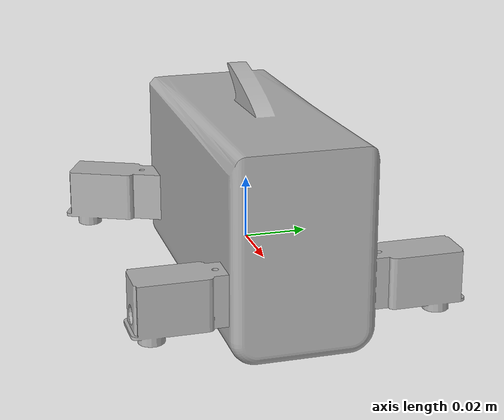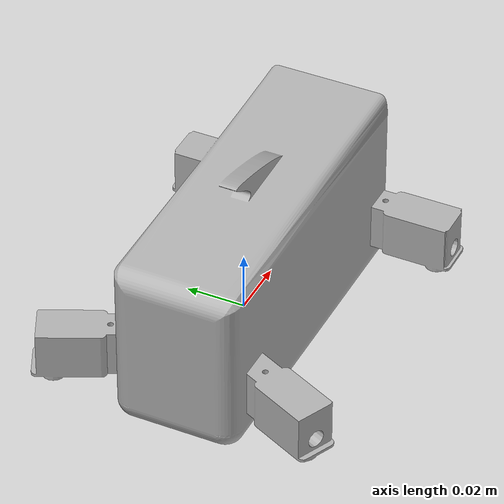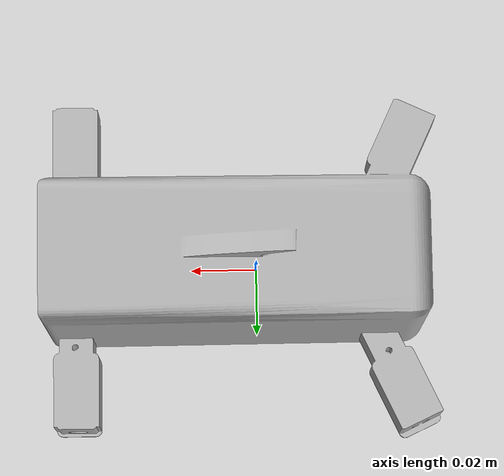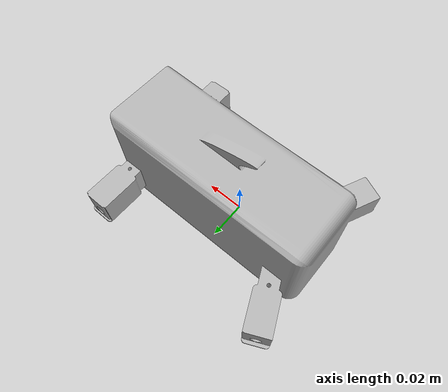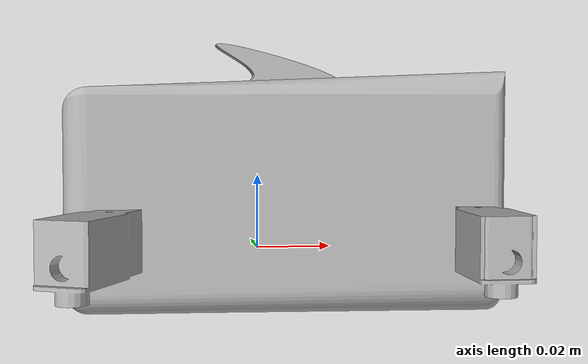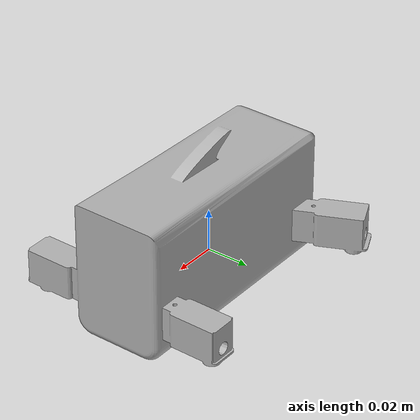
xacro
<?xml version="1.0" ?>
<robot name="Quadruped" xmlns:xacro="http://www.ros.org/wiki/xacro">

<xacro:include filename="$(find Quadruped_description)/urdf/materials.xacro" />
<xacro:include filename="$(find Quadruped_description)/urdf/Quadruped.trans" />
<xacro:include filename="$(find Quadruped_description)/urdf/Quadruped.gazebo" />
<link name="base_link">
  <inertial>
    <origin xyz="0.007088275234648649 -8.948633213286523e-08 0.01453699304466451" rpy="0 0 0"/>
    <mass value="2.5561674884840873"/>
    <inertia ixx="0.001372" iyy="0.003795" izz="0.003659" ixy="-0.0" iyz="-0.0" ixz="-4.4e-05"/>
  </inertial>
  <visual>
    <origin xyz="0 0 0" rpy="0 0 0"/>
    <geometry>
      <mesh filename="file://$(find Quadruped_description)/meshes/base_link.stl" scale="0.001 0.001 0.001"/>
    </geometry>
    <material name="silver"/>
  </visual>
  <collision>
    <origin xyz="0 0 0" rpy="0 0 0"/>
    <geometry>
      <mesh filename="file://$(find Quadruped_description)/meshes/base_link.stl" scale="0.001 0.001 0.001"/>
    </geometry>
  </collision>
</link>

</robot>

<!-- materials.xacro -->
<robot name="Quadruped" xmlns:xacro="http://www.ros.org/wiki/xacro" >

<material name="silver">
  <color rgba="0.700 0.700 0.700 1.000"/>
</material>

</robot>

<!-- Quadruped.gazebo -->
<robot name="Quadruped" xmlns:xacro="http://www.ros.org/wiki/xacro" >

<xacro:property name="body_color" value="Gazebo/Silver" />

<gazebo>
  <plugin name="control" filename="libgazebo_ros_control.so"/>
</gazebo>
<gazebo reference="base_link">
  <material>${body_color}</material>
  <mu1>0.2</mu1>
  <mu2>0.2</mu2>
  <self_collide>true</self_collide>
  <gravity>true</gravity>
</gazebo>

</robot>
